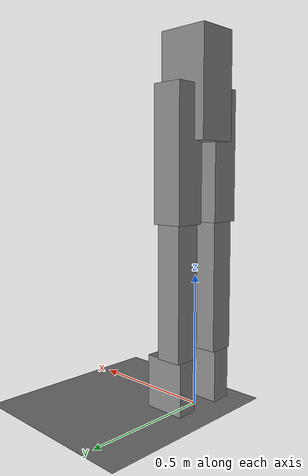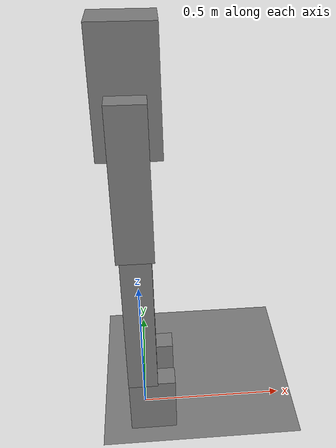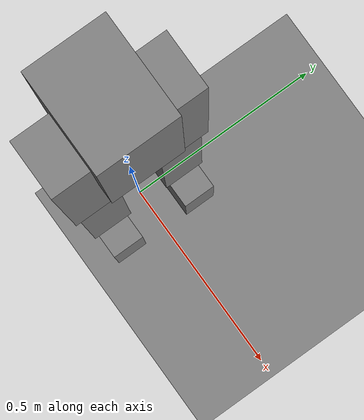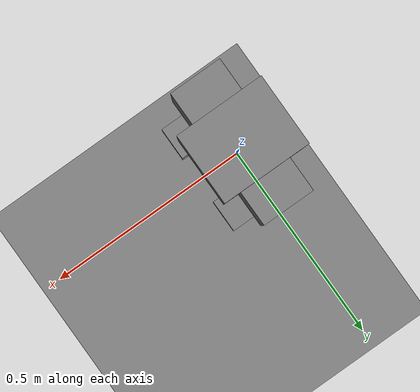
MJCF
<mujoco model="simple_humanoid">
  <compiler angle="radian" autolimits="true"/>
  <option timestep="0.002" density="1000"/>

  <default>
    <geom type="box" friction="0.8 0.02 0.01"/>
    <joint damping="0.5"/>
  </default>

  <worldbody>
    <geom name="floor" type="plane" size="5 5 0.01" rgba="0.5 0.5 0.5 1"/>

    <body name="torso" pos="0 0 1.2">
      <freejoint name="root"/>
      <geom name="torso_geom" size="0.1 0.08 0.2"/>

      <body name="leg_l_upper" pos="0 0.1 0">
        <joint name="hip_l" type="hinge" axis="0 1 0" range="-1.0 1.0"/>
        <geom name="thigh_l" size="0.06 0.06 0.25" pos="0 0 -0.25"/>
        <body name="leg_l_lower" pos="0 0 -0.5">
          <joint name="knee_l" type="hinge" axis="0 1 0" range="-1.0 1.0"/>
          <geom name="shin_l" size="0.05 0.05 0.25" pos="0 0 -0.25"/>
          <body name="foot_l" pos="0 0 -0.5">
            <joint name="ankle_l" type="hinge" axis="0 1 0" range="-0.5 0.5"/>
            <geom name="foot_geom_l" size="0.08 0.04 0.1" pos="0.03 0 -0.1"/>
          </body>
        </body>
      </body>

      <body name="leg_r_upper" pos="0 -0.1 0">
        <joint name="hip_r" type="hinge" axis="0 1 0" range="-1.0 1.0"/>
        <geom name="thigh_r" size="0.06 0.06 0.25" pos="0 0 -0.25"/>
        <body name="leg_r_lower" pos="0 0 -0.5">
          <joint name="knee_r" type="hinge" axis="0 1 0" range="-1.0 1.0"/>
          <geom name="shin_r" size="0.05 0.05 0.25" pos="0 0 -0.25"/>
          <body name="foot_r" pos="0 0 -0.5">
            <joint name="ankle_r" type="hinge" axis="0 1 0" range="-0.5 0.5"/>
            <geom name="foot_geom_r" size="0.08 0.04 0.1" pos="0.03 0 -0.1"/>
          </body>
        </body>
      </body>
    </body>
  </worldbody>

  <actuator>
    <motor name="hip_l" joint="hip_l" gear="100" ctrlrange="-1 1"/>
    <motor name="knee_l" joint="knee_l" gear="100" ctrlrange="-1 1"/>
    <motor name="ankle_l" joint="ankle_l" gear="100" ctrlrange="-1 1"/>
    <motor name="hip_r" joint="hip_r" gear="100" ctrlrange="-1 1"/>
    <motor name="knee_r" joint="knee_r" gear="100" ctrlrange="-1 1"/>
    <motor name="ankle_r" joint="ankle_r" gear="100" ctrlrange="-1 1"/>
  </actuator>
</mujoco>
